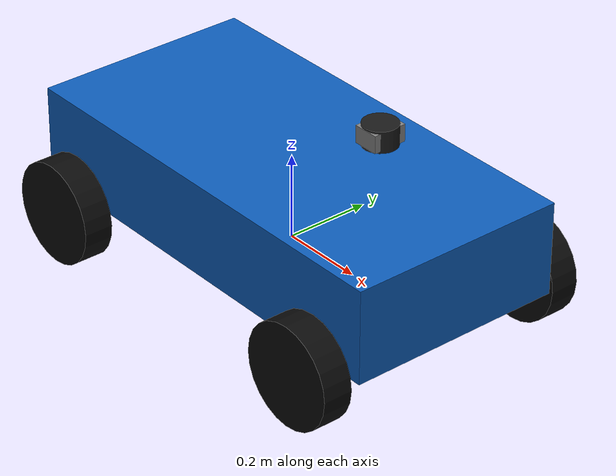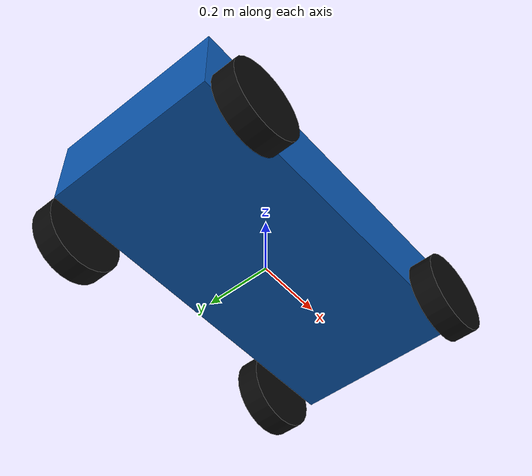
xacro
<?xml version="1.0"?>
<!-- Dimensions from course-kit models/course_ackermann/model.sdf (SI: m, kg, s). -->
<robot xmlns:xacro="http://www.ros.org/wiki/xacro" name="course_ackermann">

  <!-- Geometry parameters (no magic numbers in links/joints). -->
  <xacro:property name="base_length" value="1.05"/>
  <xacro:property name="base_width" value="0.52"/>
  <xacro:property name="base_height" value="0.22"/>
  <xacro:property name="base_visual_z" value="0.12"/>
  <xacro:property name="base_mass" value="12.0"/>
  <xacro:property name="wheel_radius" value="0.12"/>
  <xacro:property name="wheel_width" value="0.07"/>
  <xacro:property name="wheel_mass" value="0.8"/>
  <xacro:property name="track" value="0.62"/>
  <xacro:property name="wheel_base" value="0.8"/>
  <xacro:property name="half_track" value="${track / 2.0}"/>
  <xacro:property name="half_wheel_base" value="${wheel_base / 2.0}"/>

  <!-- Sensor mounts (from SDF link poses relative to base_link). -->
  <xacro:property name="sensor_x" value="0.28"/>
  <xacro:property name="sensor_y" value="0.0"/>
  <xacro:property name="sensor_z" value="0.38"/>
  <xacro:property name="sensor_mass" value="0.033333333333"/>
  <xacro:property name="sensor_ixx" value="0.000333333333"/>
  <xacro:property name="sensor_iyy" value="0.000333333333"/>
  <xacro:property name="sensor_izz" value="0.000333333333"/>

  <!-- Parent of lidar_link: must stay base_link for correct geometry. -->
  <xacro:arg name="lidar_parent" default="base_link"/>

  <xacro:macro name="box_inertial" params="mass x y z">
    <inertial>
      <mass value="${mass}"/>
      <origin xyz="0 0 0" rpy="0 0 0"/>
      <inertia
        ixx="${(mass/12.0)*(y*y + z*z)}" ixy="0.0" ixz="0.0"
        iyy="${(mass/12.0)*(x*x + z*z)}" iyz="0.0"
        izz="${(mass/12.0)*(x*x + y*y)}"/>
    </inertial>
  </xacro:macro>

  <xacro:macro name="cylinder_inertial" params="mass radius length">
    <inertial>
      <mass value="${mass}"/>
      <origin xyz="0 0 0" rpy="0 0 0"/>
      <inertia
        ixx="${0.25*mass*radius*radius + (1.0/12.0)*mass*length*length}"
        ixy="0.0" ixz="0.0"
        iyy="${0.25*mass*radius*radius + (1.0/12.0)*mass*length*length}"
        iyz="0.0"
        izz="${0.5*mass*radius*radius}"/>
    </inertial>
  </xacro:macro>

  <xacro:macro name="wheel" params="prefix x y">
    <link name="${prefix}_wheel">
      <xacro:cylinder_inertial mass="${wheel_mass}" radius="${wheel_radius}" length="${wheel_width}"/>
      <visual>
        <origin xyz="0 0 0" rpy="1.57079632679 0 0"/>
        <geometry>
          <cylinder radius="${wheel_radius}" length="${wheel_width}"/>
        </geometry>
        <material name="black">
          <color rgba="0.04 0.04 0.04 1"/>
        </material>
      </visual>
      <collision>
        <origin xyz="0 0 0" rpy="1.57079632679 0 0"/>
        <geometry>
          <cylinder radius="${wheel_radius}" length="${wheel_width}"/>
        </geometry>
      </collision>
    </link>
    <joint name="${prefix}_wheel_joint" type="continuous">
      <parent link="base_link"/>
      <child link="${prefix}_wheel"/>
      <origin xyz="${x} ${y} 0" rpy="0 0 0"/>
      <axis xyz="0 1 0"/>
    </joint>
  </xacro:macro>

  <link name="base_link">
    <inertial>
      <mass value="${base_mass}"/>
      <origin xyz="0 0 ${base_visual_z}" rpy="0 0 0"/>
      <inertia ixx="0.55" ixy="0" ixz="0" iyy="1.10" iyz="0" izz="1.40"/>
    </inertial>
    <visual>
      <origin xyz="0 0 ${base_visual_z}" rpy="0 0 0"/>
      <geometry>
        <box size="${base_length} ${base_width} ${base_height}"/>
      </geometry>
      <material name="blue">
        <color rgba="0.05 0.36 0.72 1"/>
      </material>
    </visual>
    <collision>
      <origin xyz="0 0 ${base_visual_z}" rpy="0 0 0"/>
      <geometry>
        <box size="${base_length} ${base_width} ${base_height}"/>
      </geometry>
    </collision>
  </link>

  <xacro:wheel prefix="front_left" x="${half_wheel_base}" y="${half_track}"/>
  <xacro:wheel prefix="front_right" x="${half_wheel_base}" y="${-half_track}"/>
  <xacro:wheel prefix="rear_left" x="${-half_wheel_base}" y="${half_track}"/>
  <xacro:wheel prefix="rear_right" x="${-half_wheel_base}" y="${-half_track}"/>

  <link name="camera_link">
    <inertial>
      <mass value="${sensor_mass}"/>
      <inertia ixx="${sensor_ixx}" ixy="0" ixz="0" iyy="${sensor_iyy}" iyz="0" izz="${sensor_izz}"/>
    </inertial>
    <visual>
      <geometry><box size="0.06 0.08 0.04"/></geometry>
      <material name="gray"><color rgba="0.5 0.5 0.5 1"/></material>
    </visual>
    <collision>
      <geometry><box size="0.06 0.08 0.04"/></geometry>
    </collision>
  </link>
  <joint name="camera_joint" type="fixed">
    <parent link="base_link"/>
    <child link="camera_link"/>
    <origin xyz="${sensor_x} ${sensor_y} ${sensor_z}" rpy="0 0 0"/>
  </joint>

  <link name="lidar_link">
    <inertial>
      <mass value="${sensor_mass}"/>
      <inertia ixx="${sensor_ixx}" ixy="0" ixz="0" iyy="${sensor_iyy}" iyz="0" izz="${sensor_izz}"/>
    </inertial>
    <visual>
      <geometry><cylinder radius="0.04" length="0.05"/></geometry>
      <material name="dark"><color rgba="0.1 0.1 0.1 1"/></material>
    </visual>
    <collision>
      <geometry><cylinder radius="0.04" length="0.05"/></geometry>
    </collision>
  </link>
  <joint name="lidar_joint" type="fixed">
    <parent link="$(arg lidar_parent)"/>
    <child link="lidar_link"/>
    <origin xyz="${sensor_x} ${sensor_y} ${sensor_z}" rpy="0 0 0"/>
  </joint>

  <link name="imu_link">
    <inertial>
      <mass value="${sensor_mass}"/>
      <inertia ixx="${sensor_ixx}" ixy="0" ixz="0" iyy="${sensor_iyy}" iyz="0" izz="${sensor_izz}"/>
    </inertial>
    <visual>
      <geometry><box size="0.03 0.03 0.02"/></geometry>
      <material name="orange"><color rgba="0.9 0.45 0.1 1"/></material>
    </visual>
    <collision>
      <geometry><box size="0.03 0.03 0.02"/></geometry>
    </collision>
  </link>
  <joint name="imu_joint" type="fixed">
    <parent link="base_link"/>
    <child link="imu_link"/>
    <origin xyz="${sensor_x} ${sensor_y} ${sensor_z}" rpy="0 0 0"/>
  </joint>

</robot>
